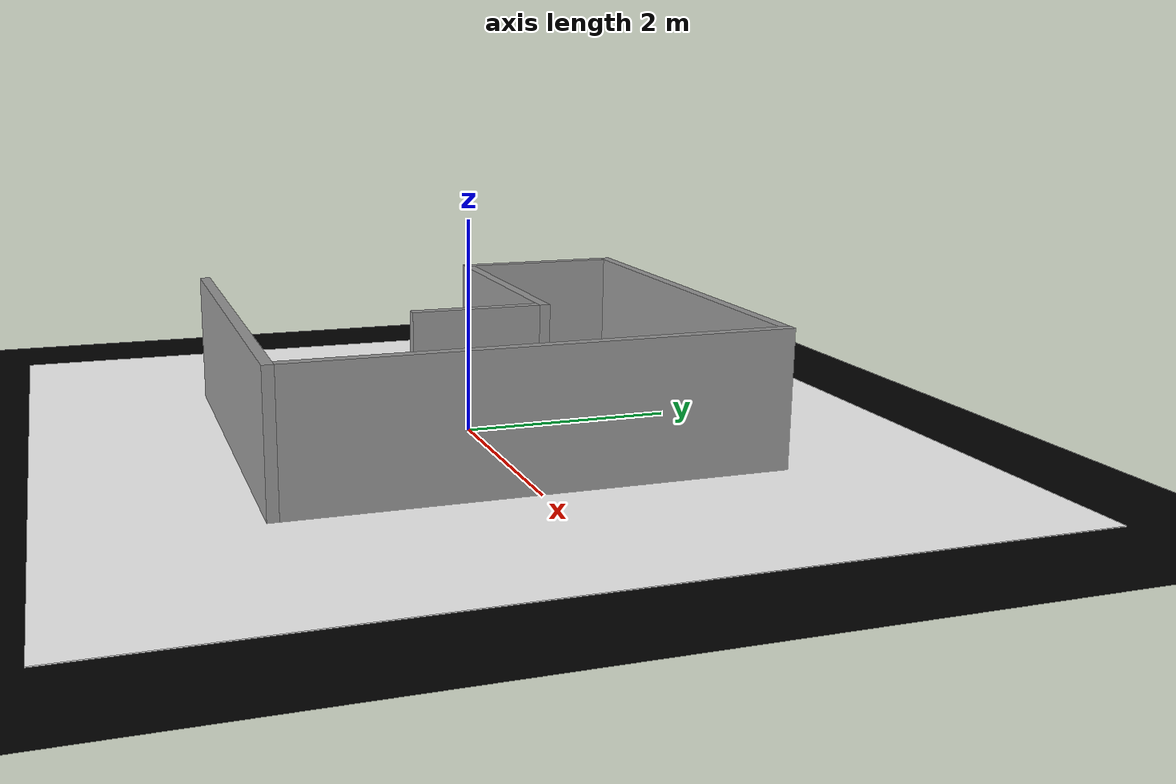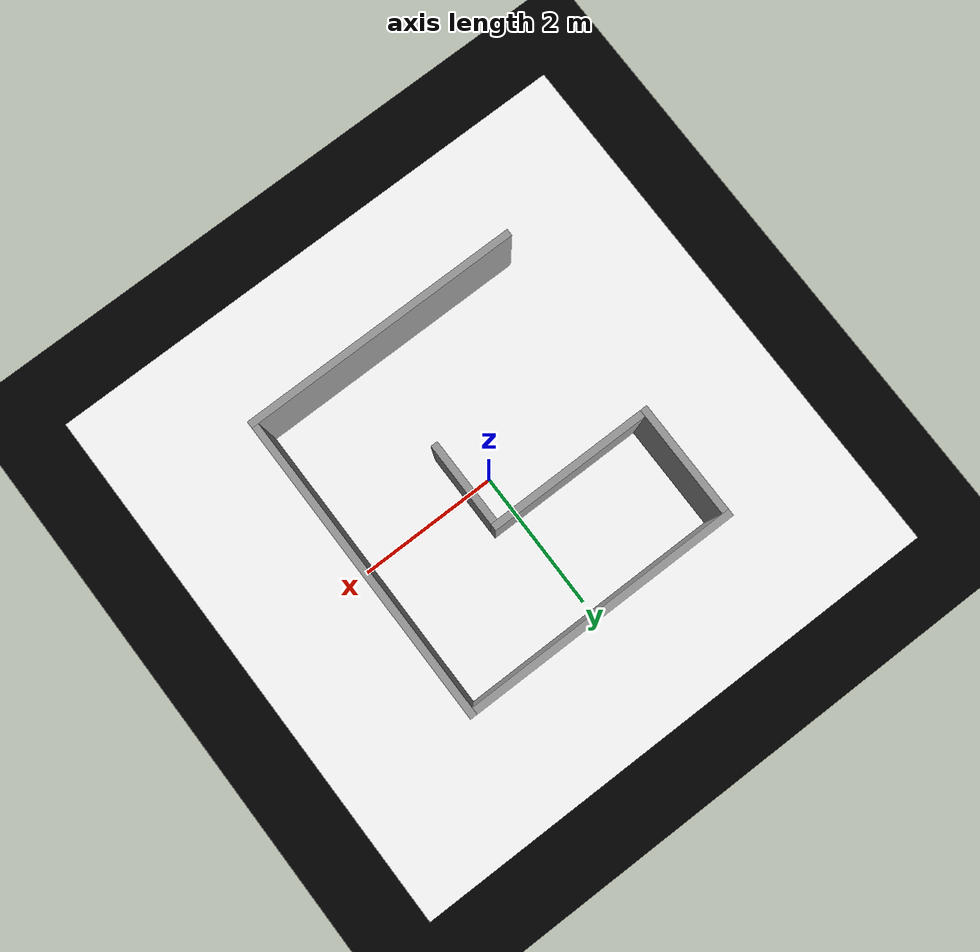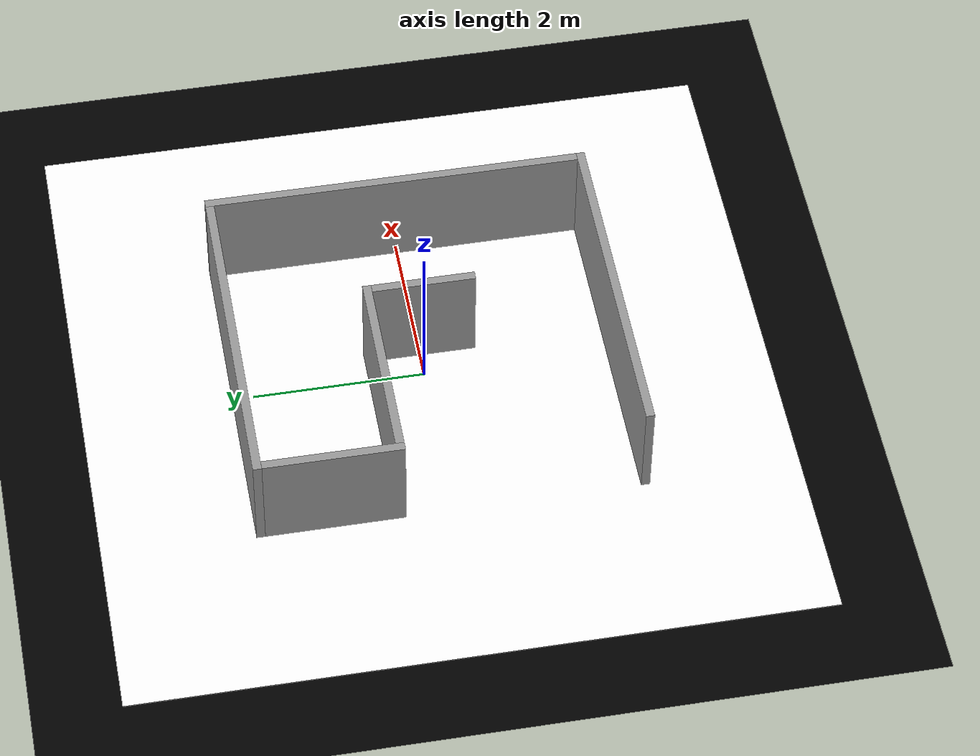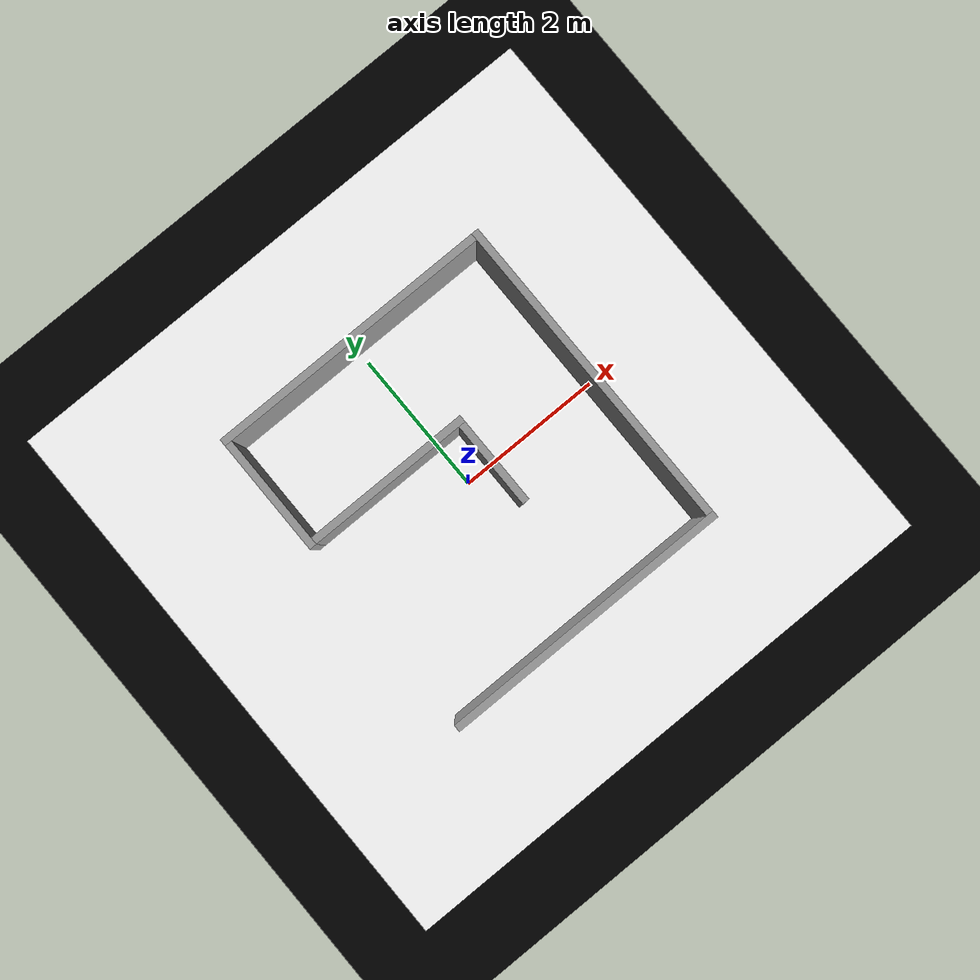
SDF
<sdf version="1.4">
  <world name="default">

    <scene>
      <ambient>0.4 0.4 0.4 1</ambient>
      <background>0.7 0.7 0.7 1</background>
      <shadows>false</shadows>
    </scene>

    <!-- Arena lights -->
    <include>
      <uri>model://simple_light</uri>
    </include>

    <include>
      <uri>model://office_floor</uri>
      <pose>0.0 0.0 0.0 0.0 0.0 -1.5708</pose>
    </include>

    <include>
      <uri>model://avoidance_world_2</uri>
    </include>

    <include>
      <uri>model://goal_marker_3</uri>
      <pose>-1.2 1.5 0.001 0 0 0</pose>
    </include>

    <physics type="ode">
      <real_time_update_rate>1000.0</real_time_update_rate>
      <max_step_size>0.001</max_step_size>
      <real_time_factor>1</real_time_factor>
      <ode>
        <solver>
          <type>quick</type>
          <iters>150</iters>
          <precon_iters>0</precon_iters>
          <sor>1.400000</sor>
          <use_dynamic_moi_rescaling>1</use_dynamic_moi_rescaling>
        </solver>
        <constraints>
          <cfm>0.00001</cfm>
          <erp>0.2</erp>
          <contact_max_correcting_vel>2000.000000</contact_max_correcting_vel>
          <contact_surface_layer>0.01000</contact_surface_layer>
        </constraints>
      </ode>
    </physics>

    <gui fullscreen='0'>
      <camera name='user_camera'>
        <pose>-8.0 -8.0 10.0 0 0.785 0.785</pose>
        <view_controller>orbit</view_controller>
      </camera>
    </gui>

  </world>
</sdf>

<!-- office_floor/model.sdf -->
<sdf version="1.5">
        <model name="puzzlebot_base">
            <static>true</static>
        <link name="link">
            <pose>0 0 0.0 0 0 1.5708 </pose>
            <collision name="collision">
                <geometry>
                <plane>
                    <normal>0 0 1</normal>
                    <size>10.0 10.0</size>
                </plane>
                </geometry>
                <surface>
                <contact>
                    <collide_bitmask>0xffff</collide_bitmask>
                    </contact>
                        <friction>
                        <ode>
                            <mu>100</mu>
                            <mu2>50</mu2>
                        </ode>
                        </friction>
                </surface>
            </collision>
            <visual name="visual">
                <pose>0 0 -0.001 0 0 0</pose>
                    <cast_shadows>false</cast_shadows>
                    <geometry>
                    <plane>
                        <normal>0 0 1</normal>
                        <size>10.0 10.0</size>
                    </plane>
                    </geometry>
                        <material>
                            <ambient>0 0 0 1</ambient>
                            <diffuse>0 0 0 1</diffuse>
                            <specular>0 0 0 1</specular>
                        </material>
                </visual>

                <visual name="mcr2_logo">
                <pose>0 0 0.0 0 0 0</pose>
                <cast_shadows>false</cast_shadows>
                <geometry>
                    <plane>
                    <normal>0 0 1</normal>
                    <size>8.0 8.0</size>
                    </plane>
                </geometry>
                        <material>
                            <ambient>1 1 1 1</ambient>
                            <diffuse>1 1 1 1</diffuse>
                            <specular>1 1 1 1</specular>
                            <pbr>
                                <metal>
                                <albedo_map>model://office_floor/materials/textures/puzzlebot_wood_7.png</albedo_map>
                                <normal_map>model://office_floor/materials/textures/puzzlebot_wood_7.png</normal_map>
                                </metal>
                            </pbr>
                        </material>
                </visual>
            </link>

        </model>
    </sdf>

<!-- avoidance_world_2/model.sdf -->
<sdf version="1.5">
  <model name='office'>

    <static>1</static>

    <link name='Wall_10'>
        <pose>0.35 -0.05 0.625 0.0 0.0 0.0</pose>

        <visual name='Wall_10_Visual'>
            <pose>0 0 0 0 -0 0</pose>
            <geometry>
                <box>
                    <size>0.1 1.2 1.25</size>
                </box>
            </geometry>
              <material>
                <ambient>0.6 0.6 0.6 1</ambient>
                <diffuse>0.6 0.6 0.6 1</diffuse>
                <specular>0.6 0.6 0.6 1</specular>
              </material>
        <cast_shadows>0</cast_shadows>
      </visual>

      <collision name='Wall_10_Collision'>
        <max_contacts>10</max_contacts>
        <pose>0 0 0.0 0 0 0</pose>
        <geometry>
          <box>
            <size>0.1 1.2 1.25</size>
          </box>
        </geometry>
        <surface>
          <friction>
            <ode>
              <mu>1</mu>
              <mu2>1</mu2>
              <fdir1>0 0 0</fdir1>
              <slip1>0</slip1>
              <slip2>0</slip2>
            </ode>
          </friction>
          <bounce>
            <restitution_coefficient>0</restitution_coefficient>
            <threshold>1e+06</threshold>
          </bounce>
          <contact>
            <collide_without_contact>0</collide_without_contact>
            <collide_without_contact_bitmask>1</collide_without_contact_bitmask>
            <collide_bitmask>1</collide_bitmask>
            <ode>
              <soft_cfm>0</soft_cfm>
              <soft_erp>0.2</soft_erp>
              <kp>1e+13</kp>
              <kd>1</kd>
              <max_vel>0.01</max_vel>
              <min_depth>0</min_depth>
            </ode>
            <bullet>
              <split_impulse>1</split_impulse>
              <split_impulse_penetration_threshold>-0.01</split_impulse_penetration_threshold>
              <soft_cfm>0</soft_cfm>
              <soft_erp>0.2</soft_erp>
              <kp>1e+13</kp>
              <kd>1</kd>
            </bullet>
          </contact>
        </surface>
      </collision>
    </link>

    <link name='Wall_20'>
          <pose>-0.750 0.6 0.625 0.0 0.0 0.0</pose>

          <visual name='Wall_20_Visual'>
              <pose>0 0 0 0 -0 0</pose>
              <geometry>
                  <box>
                      <size>2.3 0.1 1.25</size>
                  </box>
              </geometry>
              <material>
                <ambient>0.6 0.6 0.6 1</ambient>
                <diffuse>0.6 0.6 0.6 1</diffuse>
                <specular>0.6 0.6 0.6 1</specular>
              </material>
          <cast_shadows>0</cast_shadows>
        </visual>

        <collision name='Wall_20_Collision'>
          <max_contacts>10</max_contacts>
          <pose>0 0 0.0 0 0 0</pose>
          <geometry>
            <box>
              <size>2.3 0.1 1.25</size>
            </box>
          </geometry>
          <surface>
            <friction>
              <ode>
                <mu>1</mu>
                <mu2>1</mu2>
                <fdir1>0 0 0</fdir1>
                <slip1>0</slip1>
                <slip2>0</slip2>
              </ode>
            </friction>
            <bounce>
              <restitution_coefficient>0</restitution_coefficient>
              <threshold>1e+06</threshold>
            </bounce>
            <contact>
              <collide_without_contact>0</collide_without_contact>
              <collide_without_contact_bitmask>1</collide_without_contact_bitmask>
              <collide_bitmask>1</collide_bitmask>
              <ode>
                <soft_cfm>0</soft_cfm>
                <soft_erp>0.2</soft_erp>
                <kp>1e+13</kp>
                <kd>1</kd>
                <max_vel>0.01</max_vel>
                <min_depth>0</min_depth>
              </ode>
              <bullet>
                <split_impulse>1</split_impulse>
                <split_impulse_penetration_threshold>-0.01</split_impulse_penetration_threshold>
                <soft_cfm>0</soft_cfm>
                <soft_erp>0.2</soft_erp>
                <kp>1e+13</kp>
                <kd>1</kd>
              </bullet>
            </contact>
          </surface>
        </collision>
    </link>

    <link name='Wall_30'>
        <pose>-1.95 1.35 0.625 0.0 0.0 0.0</pose>

        <visual name='Wall_30_Visual'>
            <pose>0 0 0 0 -0 0</pose>
            <geometry>
                <box>
                    <size>0.1 1.6 1.25</size>
                </box>
            </geometry>
              <material>
                <ambient>0.6 0.6 0.6 1</ambient>
                <diffuse>0.6 0.6 0.6 1</diffuse>
                <specular>0.6 0.6 0.6 1</specular>
              </material>
        <cast_shadows>0</cast_shadows>
      </visual>

      <collision name='Wall_30_Collision'>
        <max_contacts>10</max_contacts>
        <pose>0 0 0.0 0 0 0</pose>
        <geometry>
          <box>
            <size>0.1 1.6 1.25</size>
          </box>
        </geometry>
        <surface>
          <friction>
            <ode>
              <mu>1</mu>
              <mu2>1</mu2>
              <fdir1>0 0 0</fdir1>
              <slip1>0</slip1>
              <slip2>0</slip2>
            </ode>
          </friction>
          <bounce>
            <restitution_coefficient>0</restitution_coefficient>
            <threshold>1e+06</threshold>
          </bounce>
          <contact>
            <collide_without_contact>0</collide_without_contact>
            <collide_without_contact_bitmask>1</collide_without_contact_bitmask>
            <collide_bitmask>1</collide_bitmask>
            <ode>
              <soft_cfm>0</soft_cfm>
              <soft_erp>0.2</soft_erp>
              <kp>1e+13</kp>
              <kd>1</kd>
              <max_vel>0.01</max_vel>
              <min_depth>0</min_depth>
            </ode>
            <bullet>
              <split_impulse>1</split_impulse>
              <split_impulse_penetration_threshold>-0.01</split_impulse_penetration_threshold>
              <soft_cfm>0</soft_cfm>
              <soft_erp>0.2</soft_erp>
              <kp>1e+13</kp>
              <kd>1</kd>
            </bullet>
          </contact>
        </surface>
      </collision>
    </link>

    <link name='Wall_40'>
        <pose>-0.05 2.2 0.625 0.0 0.0 0.0</pose>

        <visual name='Wall_40_Visual'>
            <pose>0 0 0 0 -0 0</pose>
            <geometry>
                <box>
                    <size>3.9 0.1 1.25</size>
                </box>
            </geometry>
              <material>
                <ambient>0.6 0.6 0.6 1</ambient>
                <diffuse>0.6 0.6 0.6 1</diffuse>
                <specular>0.6 0.6 0.6 1</specular>
              </material>
        <cast_shadows>0</cast_shadows>
      </visual>

      <collision name='Wall_40_Collision'>
        <max_contacts>10</max_contacts>
        <pose>0 0 0.0 0 0 0</pose>
        <geometry>
          <box>
            <size>3.9 0.1 1.25</size>
          </box>
        </geometry>
        <surface>
          <friction>
            <ode>
              <mu>1</mu>
              <mu2>1</mu2>
              <fdir1>0 0 0</fdir1>
              <slip1>0</slip1>
              <slip2>0</slip2>
            </ode>
          </friction>
          <bounce>
            <restitution_coefficient>0</restitution_coefficient>
            <threshold>1e+06</threshold>
          </bounce>
          <contact>
            <collide_without_contact>0</collide_without_contact>
            <collide_without_contact_bitmask>1</collide_without_contact_bitmask>
            <collide_bitmask>1</collide_bitmask>
            <ode>
              <soft_cfm>0</soft_cfm>
              <soft_erp>0.2</soft_erp>
              <kp>1e+13</kp>
              <kd>1</kd>
              <max_vel>0.01</max_vel>
              <min_depth>0</min_depth>
            </ode>
            <bullet>
              <split_impulse>1</split_impulse>
              <split_impulse_penetration_threshold>-0.01</split_impulse_penetration_threshold>
              <soft_cfm>0</soft_cfm>
              <soft_erp>0.2</soft_erp>
              <kp>1e+13</kp>
              <kd>1</kd>
            </bullet>
          </contact>
        </surface>
      </collision>
    </link>

    <link name='Wall_50'>
        <pose>1.95 0.05 0.625 0.0 0.0 0.0</pose>

        <visual name='Wall_50_Visual'>
            <pose>0 0 0 0 -0 0</pose>
            <geometry>
                <box>
                    <size>0.1 4.4 1.25</size>
                </box>
            </geometry>
              <material>
                <ambient>0.6 0.6 0.6 1</ambient>
                <diffuse>0.6 0.6 0.6 1</diffuse>
                <specular>0.6 0.6 0.6 1</specular>
              </material>
        <cast_shadows>0</cast_shadows>
      </visual>

      <collision name='Wall_50_Collision'>
        <max_contacts>10</max_contacts>
        <pose>0 0 0.0 0 0 0</pose>
        <geometry>
          <box>
            <size>0.1 4.4 1.25</size>
          </box>
        </geometry>
        <surface>
          <friction>
            <ode>
              <mu>1</mu>
              <mu2>1</mu2>
              <fdir1>0 0 0</fdir1>
              <slip1>0</slip1>
              <slip2>0</slip2>
            </ode>
          </friction>
          <bounce>
            <restitution_coefficient>0</restitution_coefficient>
            <threshold>1e+06</threshold>
          </bounce>
          <contact>
            <collide_without_contact>0</collide_without_contact>
            <collide_without_contact_bitmask>1</collide_without_contact_bitmask>
            <collide_bitmask>1</collide_bitmask>
            <ode>
              <soft_cfm>0</soft_cfm>
              <soft_erp>0.2</soft_erp>
              <kp>1e+13</kp>
              <kd>1</kd>
              <max_vel>0.01</max_vel>
              <min_depth>0</min_depth>
            </ode>
            <bullet>
              <split_impulse>1</split_impulse>
              <split_impulse_penetration_threshold>-0.01</split_impulse_penetration_threshold>
              <soft_cfm>0</soft_cfm>
              <soft_erp>0.2</soft_erp>
              <kp>1e+13</kp>
              <kd>1</kd>
            </bullet>
          </contact>
        </surface>
      </collision>
    </link>

    <link name='Wall_60'>
        <pose>0.0 -2.2 0.625 0.0 0.0 0.0</pose>

        <visual name='Wall_60_Visual'>
            <pose>0 0 0 0 -0 0</pose>
            <geometry>
                <box>
                    <size>4.0 0.1 1.25</size>
                </box>
            </geometry>
              <material>
                <ambient>0.6 0.6 0.6 1</ambient>
                <diffuse>0.6 0.6 0.6 1</diffuse>
                <specular>0.6 0.6 0.6 1</specular>
              </material>
        <cast_shadows>0</cast_shadows>
      </visual>

      <collision name='Wall_60_Collision'>
        <max_contacts>10</max_contacts>
        <pose>0 0 0.0 0 0 0</pose>
        <geometry>
          <box>
            <size>4.0 0.1 1.25</size>
          </box>
        </geometry>
        <surface>
          <friction>
            <ode>
              <mu>1</mu>
              <mu2>1</mu2>
              <fdir1>0 0 0</fdir1>
              <slip1>0</slip1>
              <slip2>0</slip2>
            </ode>
          </friction>
          <bounce>
            <restitution_coefficient>0</restitution_coefficient>
            <threshold>1e+06</threshold>
          </bounce>
          <contact>
            <collide_without_contact>0</collide_without_contact>
            <collide_without_contact_bitmask>1</collide_without_contact_bitmask>
            <collide_bitmask>1</collide_bitmask>
            <ode>
              <soft_cfm>0</soft_cfm>
              <soft_erp>0.2</soft_erp>
              <kp>1e+13</kp>
              <kd>1</kd>
              <max_vel>0.01</max_vel>
              <min_depth>0</min_depth>
            </ode>
            <bullet>
              <split_impulse>1</split_impulse>
              <split_impulse_penetration_threshold>-0.01</split_impulse_penetration_threshold>
              <soft_cfm>0</soft_cfm>
              <soft_erp>0.2</soft_erp>
              <kp>1e+13</kp>
              <kd>1</kd>
            </bullet>
          </contact>
        </surface>
      </collision>
    </link>

  </model>
  </sdf>

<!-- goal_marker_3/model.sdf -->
<sdf version="1.5">
        <model name="goal_marker_3">
            <static>true</static>
                <link name="link">
                    <pose>0 0 0 0 0 0</pose>
                    <visual name="visual">
                        <cast_shadows>false</cast_shadows>
                        <geometry>
                            <plane>
                                    <normal>0 0 1</normal>
                                    <size>0.4 0.4</size>
                            </plane>
                        </geometry>
                        <material>
                            <ambient>1 1 1 1</ambient>
                            <diffuse>1 1 1 1</diffuse>
                            <specular>1 1 1 1</specular>
                            <pbr>
                                <metal>
                                <albedo_map>model://goal_marker_3/materials/textures/mcr2_goal_3.png</albedo_map>
                                <normal_map>model://goal_marker_3/materials/textures/mcr2_goal_3.png</normal_map>
                                </metal>
                            </pbr>
                        </material>
                    </visual>
                </link>
        </model>
    </sdf>
